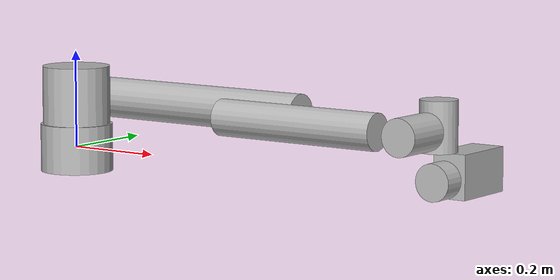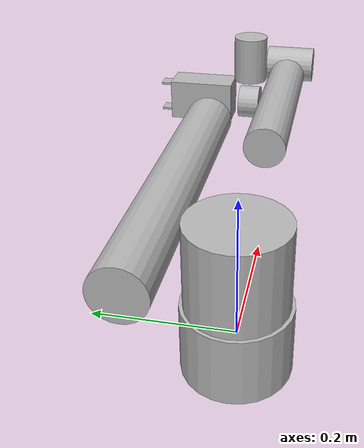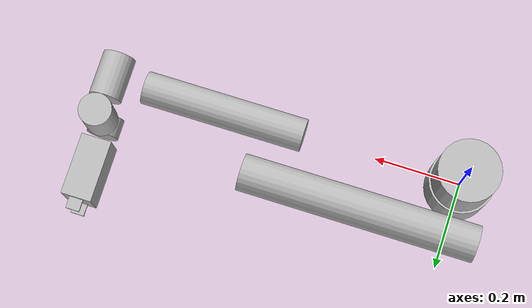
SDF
<sdf version="1.6">
		<model name="ur5e_gripper">
			<self_collide>true</self_collide>
			<pose>0.0 0.0 0.0 0.0 0.0 0.0</pose>

			<link name="1-base_link">
					<pose>0.0 0.0 0.0 0.0 0.0 3.1414999961853027</pose>
					<inertial>
						<pose>0.0 0.0 0.0 0.0 0.0 0.0</pose>
						<inertia>
							<ixx>1.0</ixx>
							<ixy>0.0</ixy>
							<ixz>0.0</ixz>
							<iyy>1.0</iyy>
							<iyz>0.0</iyz>
							<izz>1.0</izz>
						</inertia>
						<mass>4.0</mass>
					</inertial>

					<collision name="1--base_link_collision">
						<laser_retro>0.0</laser_retro>
						<pose>0.0 0.0 0.0 0.0 0.0 0.0</pose>
						<geometry>
							<cylinder>
								<radius>0.07500000298023224</radius>
								<length>0.09880000352859497</length>
							</cylinder>
						</geometry>
						</collision>
					<visual name="1--base_link_collision">
						<laser_retro>0.0</laser_retro>
						<pose>0.0 0.0 0.0 0.0 0.0 0.0</pose>
						<geometry>
							<cylinder>
								<radius>0.07500000298023224</radius>
								<length>0.09880000352859497</length>
							</cylinder>
						</geometry>
						</visual>
					 If you wish to reflect these aspects in SDF,
					     please add an appropriate annotation to the sensor. --&gt;
			</link>

			<link name="2-shoulder_link">
					<pose>0.0 0.0 0.08915899693965912 0.0 0.0 0.0</pose>
					<inertial>
						<pose>0.0 0.001930000027641654 -0.025609999895095825 0.0 0.0 0.0</pose>
						<inertia>
							<ixx>1.0</ixx>
							<ixy>0.0</ixy>
							<ixz>0.0</ixz>
							<iyy>1.0</iyy>
							<iyz>0.0</iyz>
							<izz>1.0</izz>
						</inertia>
						<mass>3.760999917984009</mass>
					</inertial>

					<collision name="2--shoulder_link_collision">
						<laser_retro>0.0</laser_retro>
						<pose>0.0 0.0 0.015599995851516724 0.0 0.0 1.5707499980926514</pose>
						<geometry>
							<cylinder>
								<radius>0.07000000029802322</radius>
								<length>0.12999999523162842</length>
							</cylinder>
						</geometry>
						</collision>
					<visual name="2--shoulder_link_collision">
						<laser_retro>0.0</laser_retro>
						<pose>0.0 0.0 0.015599995851516724 0.0 0.0 1.5707499980926514</pose>
						<geometry>
							<cylinder>
								<radius>0.07000000029802322</radius>
								<length>0.12999999523162842</length>
							</cylinder>
						</geometry>
						</visual>
					 If you wish to reflect these aspects in SDF,
					     please add an appropriate annotation to the sensor. --&gt;
			</link>

			<link name="3-upper_arm_link">
					<pose>0.0 0.1358499974012375 0.08915899693965912 3.1414999961853027 1.5707499980926514 3.1414999961853027</pose>
					<inertial>
						<pose>0.0 -0.02420100010931492 0.21250000596046448 0.0 0.0 0.0</pose>
						<inertia>
							<ixx>1.0</ixx>
							<ixy>0.0</ixy>
							<ixz>0.0</ixz>
							<iyy>1.0</iyy>
							<iyz>0.0</iyz>
							<izz>1.0</izz>
						</inertia>
						<mass>8.057999610900879</mass>
					</inertial>

					<collision name="3--upper_arm_link_collision">
						<laser_retro>0.0</laser_retro>
						<pose>0.0 0.0 0.20500001311302185 0.0 0.0 0.0</pose>
						<geometry>
							<cylinder>
								<radius>0.042500000447034836</radius>
								<length>0.5400000214576721</length>
							</cylinder>
						</geometry>
						</collision>
					<visual name="3--upper_arm_link_collision">
						<laser_retro>0.0</laser_retro>
						<pose>0.0 0.0 0.20500001311302185 0.0 0.0 0.0</pose>
						<geometry>
							<cylinder>
								<radius>0.042500000447034836</radius>
								<length>0.5400000214576721</length>
							</cylinder>
						</geometry>
						</visual>
					 If you wish to reflect these aspects in SDF,
					     please add an appropriate annotation to the sensor. --&gt;
			</link>

			<link name="4-forearm_link">
					<pose>0.42500001192092896 0.01614999957382679 0.08915899693965912 3.1414999961853027 1.5707499980926514 3.1414999961853027</pose>
					<inertial>
						<pose>0.0 0.0 0.0 0.0 0.0 0.0</pose>
						<inertia>
							<ixx>1.0</ixx>
							<ixy>0.0</ixy>
							<ixz>0.0</ixz>
							<iyy>1.0</iyy>
							<iyz>0.0</iyz>
							<izz>1.0</izz>
						</inertia>
						<mass>2.8459999561309814</mass>
					</inertial>

					<collision name="4--forearm_link_collision">
						<laser_retro>0.0</laser_retro>
						<pose>0.0 0.0 0.1274999976158142 0.0 0.0 0.0</pose>
						<geometry>
							<cylinder>
								<radius>0.03750000149011612</radius>
								<length>0.3709999918937683</length>
							</cylinder>
						</geometry>
						</collision>
					<visual name="4--forearm_link_collision">
						<laser_retro>0.0</laser_retro>
						<pose>0.0 0.0 0.1274999976158142 0.0 0.0 0.0</pose>
						<geometry>
							<cylinder>
								<radius>0.03750000149011612</radius>
								<length>0.3709999918937683</length>
							</cylinder>
						</geometry>
						</visual>
					 If you wish to reflect these aspects in SDF,
					     please add an appropriate annotation to the sensor. --&gt;
			</link>

			<link name="5-wrist_1_link">
					<pose>0.8172500133514404 0.01614999957382679 0.08915899693965912 3.1414999961853027 0.0 3.1414999961853027</pose>
					<inertial>
						<pose>0.0 0.0 0.0 0.0 0.0 0.0</pose>
						<inertia>
							<ixx>1.0</ixx>
							<ixy>0.0</ixy>
							<ixz>0.0</ixz>
							<iyy>1.0</iyy>
							<iyz>0.0</iyz>
							<izz>1.0</izz>
						</inertia>
						<mass>1.3700000047683716</mass>
					</inertial>

					<collision name="5--wrist_1_link_collision">
						<laser_retro>0.0</laser_retro>
						<pose>0.0 0.0 -0.001500002108514309 1.5707499980926514 0.0 0.0</pose>
						<geometry>
							<cylinder>
								<radius>0.03750000149011612</radius>
								<length>0.10199999809265137</length>
							</cylinder>
						</geometry>
						</collision>
					<visual name="5--wrist_1_link_collision">
						<laser_retro>0.0</laser_retro>
						<pose>0.0 0.0 -0.001500002108514309 1.5707499980926514 0.0 0.0</pose>
						<geometry>
							<cylinder>
								<radius>0.03750000149011612</radius>
								<length>0.10199999809265137</length>
							</cylinder>
						</geometry>
						</visual>
					 If you wish to reflect these aspects in SDF,
					     please add an appropriate annotation to the sensor. --&gt;
			</link>

			<link name="6-wrist_2_link">
					<pose>0.8172500133514404 0.1091499999165535 0.08915899693965912 3.1414999961853027 0.0 3.1414999961853027</pose>
					<inertial>
						<pose>0.0 0.0 0.0 0.0 0.0 0.0</pose>
						<inertia>
							<ixx>1.0</ixx>
							<ixy>0.0</ixy>
							<ixz>0.0</ixz>
							<iyy>1.0</iyy>
							<iyz>0.0</iyz>
							<izz>1.0</izz>
						</inertia>
						<mass>1.2999999523162842</mass>
					</inertial>

					<collision name="6--wrist_2_link_collision">
						<laser_retro>0.0</laser_retro>
						<pose>0.0 0.0 -0.008999999612569809 0.0 0.0 0.0</pose>
						<geometry>
							<cylinder>
								<radius>0.03750000149011612</radius>
								<length>0.10199999809265137</length>
							</cylinder>
						</geometry>
						</collision>
					<visual name="6--wrist_2_link_collision">
						<laser_retro>0.0</laser_retro>
						<pose>0.0 0.0 -0.008999999612569809 0.0 0.0 0.0</pose>
						<geometry>
							<cylinder>
								<radius>0.03750000149011612</radius>
								<length>0.10199999809265137</length>
							</cylinder>
						</geometry>
						</visual>
					 If you wish to reflect these aspects in SDF,
					     please add an appropriate annotation to the sensor. --&gt;
			</link>

			<link name="7-wrist_3_link">
					<pose>0.8172500133514404 0.1091499999165535 -0.005491000134497881 3.1414999961853027 0.0 3.1414999961853027</pose>
					<inertial>
						<pose>0.0 0.0 0.0 0.0 0.0 0.0</pose>
						<inertia>
							<ixx>1.0</ixx>
							<ixy>0.0</ixy>
							<ixz>0.0</ixz>
							<iyy>1.0</iyy>
							<iyz>0.0</iyz>
							<izz>1.0</izz>
						</inertia>
						<mass>0.36500000953674316</mass>
					</inertial>

					<collision name="7--wrist_3_link_collision">
						<laser_retro>0.0</laser_retro>
						<pose>0.0 0.0 0.004749998450279236 1.5707499980926514 0.0 0.0</pose>
						<geometry>
							<cylinder>
								<radius>0.03750000149011612</radius>
								<length>0.04699999839067459</length>
							</cylinder>
						</geometry>
						</collision>
					<visual name="7--wrist_3_link_collision">
						<laser_retro>0.0</laser_retro>
						<pose>0.0 0.0 0.004749998450279236 1.5707499980926514 0.0 0.0</pose>
						<geometry>
							<cylinder>
								<radius>0.03750000149011612</radius>
								<length>0.04699999839067459</length>
							</cylinder>
						</geometry>
						</visual>
			</link>

			<link name="8-link_2fg7_base">
					<pose>0.8172500133514404 0.22165000438690186 -0.005491000134497881 -1.5707499980926514 0.0 0.0</pose>
					<inertial>
						<pose>0.0 0.0 0.0 0.0 0.0 0.0</pose>
						<inertia>
							<ixx>1.0</ixx>
							<ixy>0.0</ixy>
							<ixz>0.0</ixz>
							<iyy>1.0</iyy>
							<iyz>0.0</iyz>
							<izz>1.0</izz>
						</inertia>
						<mass>1.2646523714065552</mass>
					</inertial>

					<collision name="8--link_2fg7_box">
						<laser_retro>0.0</laser_retro>
						<pose>0.0 0.0 0.0 0.0 0.0 0.0</pose>
						<geometry>
							<box>
								<size>0.07100000232458115 0.09000000357627869 0.1445000022649765</size>
							</box>
						</geometry>
						</collision>
					<visual name="8--link_2fg7_box">
						<laser_retro>0.0</laser_retro>
						<pose>0.0 0.0 0.0 0.0 0.0 0.0</pose>
						<geometry>
							<box>
								<size>0.07100000232458115 0.09000000357627869 0.1445000022649765</size>
							</box>
						</geometry>
						</visual>

			</link>

			<link name="9-rightFingerLink">
					<pose>0.8172500133514404 0.299156004562974 -0.037730001378804445 -1.5707499980926514 0.0 0.0</pose>
					<inertial>
						<pose>0.0 0.0 0.0 0.0 0.0 0.0</pose>
						<inertia>
							<ixx>1.0</ixx>
							<ixy>0.0</ixy>
							<ixz>0.0</ixz>
							<iyy>1.0</iyy>
							<iyz>0.0</iyz>
							<izz>1.0</izz>
						</inertia>
						<mass>0.023219384253025055</mass>
					</inertial>

					<collision name="9--rightFingerBody">
						<laser_retro>0.0</laser_retro>
						<pose>0.0 0.0 0.0 0.0 0.0 0.0</pose>
						<geometry>
							<box>
								<size>0.03200000151991844 0.004999999888241291 0.04500000178813934</size>
							</box>
						</geometry>
						</collision>
					<visual name="9--rightFingerBody">
						<laser_retro>0.0</laser_retro>
						<pose>0.0 0.0 0.0 0.0 0.0 0.0</pose>
						<geometry>
							<box>
								<size>0.03200000151991844 0.004999999888241291 0.04500000178813934</size>
							</box>
						</geometry>
						</visual>
			</link>

			<link name="10-leftFingerLink">
					<pose>0.8172500133514404 0.299156004562974 0.026748001109808683 -1.5707499980926514 0.0 0.0</pose>
					<inertial>
						<pose>0.0 0.0 0.0 0.0 0.0 0.0</pose>
						<inertia>
							<ixx>1.0</ixx>
							<ixy>0.0</ixy>
							<ixz>0.0</ixz>
							<iyy>1.0</iyy>
							<iyz>0.0</iyz>
							<izz>1.0</izz>
						</inertia>
						<mass>0.023219384253025055</mass>
					</inertial>

					<collision name="10--leftFingerBody">
						<laser_retro>0.0</laser_retro>
						<pose>0.0 0.0 0.0 0.0 0.0 0.0</pose>
						<geometry>
							<box>
								<size>0.03200000151991844 0.004999999888241291 0.04500000178813934</size>
							</box>
						</geometry>
						</collision>
					<visual name="10--leftFingerBody">
						<laser_retro>0.0</laser_retro>
						<pose>0.0 0.0 0.0 0.0 0.0 0.0</pose>
						<geometry>
							<box>
								<size>0.03200000151991844 0.004999999888241291 0.04500000178813934</size>
							</box>
						</geometry>
						</visual>
			</link>

			<joint name="11-shoulder_lift_joint" type="revolute">
				<pose>-2.8267410634441603E-10 -0.06584999710321428 -6.547961940728004E-15 3.1415926514434447 -1.5707499980928503 3.1415926514434447</pose>
				<parent>2-shoulder_link</parent>
				<child>3-upper_arm_link</child>

				<axis>
					<xyz>0 1 0</xyz>
					<dynamics>
						<damping>10</damping>
					</dynamics>
					<limit>
						<lower>-6.2829999923706055</lower>
						<upper>6.2829999923706055</upper>
						<velocity>1.5707499980926514</velocity>
						<effort>1000</effort>
					</limit>
				</axis>

			</joint>

			<joint name="12-leftFingerGripper" type="prismatic">
				<pose>0.0 -3.590787001163387E-6 -0.005257492551495269 -1.5707499980926514 -0.0 0.0</pose>
				<parent>8-link_2fg7_base</parent>
				<child>10-leftFingerLink</child>

				<axis>
					<xyz>0 0 -1</xyz>
					<dynamics>
						<damping>1000</damping>
					</dynamics>
					<limit>
						<lower>-6.2829999923706055</lower>
						<upper>6.2829999923706055</upper>
						<velocity>1</velocity>
						<effort>1000</effort>
					</limit>
				</axis>

			</joint>

			<joint name="13-rightFingerGripper" type="prismatic">
				<pose>0.0 -3.590717805021515E-6 -0.0052545053693176524 -1.5707499980926514 -0.0 0.0</pose>
				<parent>8-link_2fg7_base</parent>
				<child>9-rightFingerLink</child>

				<axis>
					<xyz>0 0 1</xyz>
					<dynamics>
						<damping>1000</damping>
					</dynamics>
					<limit>
						<lower>-6.2829999923706055</lower>
						<upper>6.2829999923706055</upper>
						<velocity>1</velocity>
						<effort>1000</effort>
					</limit>
				</axis>

			</joint>

			<joint name="14-wrist_3_joint" type="revolute">
				<pose>0.0 0.03750877151316749 0.007350001424798153 0.0 1.6543612251060553E-24 0.0</pose>
				<parent>6-wrist_2_link</parent>
				<child>7-wrist_3_link</child>

				<axis>
					<xyz>0 1 0</xyz>
					<dynamics>
						<damping>10</damping>
					</dynamics>
					<limit>
						<lower>-6.2829999923706055</lower>
						<upper>6.2829999923706055</upper>
						<velocity>1.5707499980926514</velocity>
						<effort>1000</effort>
					</limit>
				</axis>

			</joint>

			<joint name="15-wrist_1_joint" type="revolute">
				<pose>-9.99982973788116E-4 9.09677627183858E-8 1.821876987749549E-5 1.1070560616774092 -1.5706927326673965 -1.107148716935551</pose>
				<parent>4-forearm_link</parent>
				<child>5-wrist_1_link</child>

				<axis>
					<xyz>0 1 0</xyz>
					<dynamics>
						<damping>10</damping>
					</dynamics>
					<limit>
						<lower>-6.2829999923706055</lower>
						<upper>6.2829999923706055</upper>
						<velocity>1.5707499980926514</velocity>
						<effort>1000</effort>
					</limit>
				</axis>

			</joint>

			<joint name="16-elbow_joint" type="revolute">
				<pose>1.969021275079197E-5 0.07719999738033359 -0.024999990603192246 2.0517283354985477E-21 -0.0 0.0</pose>
				<parent>3-upper_arm_link</parent>
				<child>4-forearm_link</child>

				<axis>
					<xyz>0 1 0</xyz>
					<dynamics>
						<damping>10</damping>
					</dynamics>
					<limit>
						<lower>-6.2829999923706055</lower>
						<upper>6.2829999923706055</upper>
						<velocity>1.5707499980926514</velocity>
						<effort>1000</effort>
					</limit>
				</axis>

			</joint>

			<joint name="17-shoulder_pan_joint" type="revolute">
				<pose>0.0 0.0 0.009641006588935852 0.0 -0.0 3.1414999961853027</pose>
				<parent>1-base_link</parent>
				<child>2-shoulder_link</child>

				<axis>
					<xyz>0 0 1</xyz>
					<dynamics>
						<damping>10</damping>
					</dynamics>
					<limit>
						<lower>-6.2829999923706055</lower>
						<upper>6.2829999923706055</upper>
						<velocity>1.5707499980926514</velocity>
						<effort>1000</effort>
					</limit>
				</axis>

			</joint>

			<joint name="18-wrist_2_joint" type="revolute">
				<pose>-8.617138637090349E-6 0.0027499983000136563 0.03749138435151607 0.0 1.6543612251060553E-24 0.0</pose>
				<parent>5-wrist_1_link</parent>
				<child>6-wrist_2_link</child>

				<axis>
					<xyz>0 0 -1</xyz>
					<dynamics>
						<damping>10</damping>
					</dynamics>
					<limit>
						<lower>-6.2829999923706055</lower>
						<upper>6.2829999923706055</upper>
						<velocity>1.5707499980926514</velocity>
						<effort>1000</effort>
					</limit>
				</axis>

			</joint>

			<joint name="19-fixedJoint" type="fixed">
				<parent>7-wrist_3_link</parent>
				<child>8-link_2fg7_base</child>
				<axis><xyz>0 0 1</xyz></axis>
			</joint>

		</model>
</sdf>
